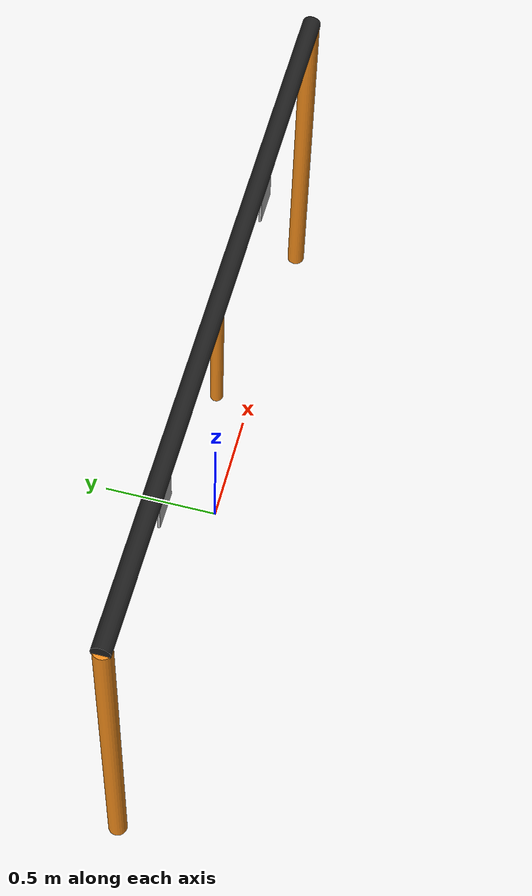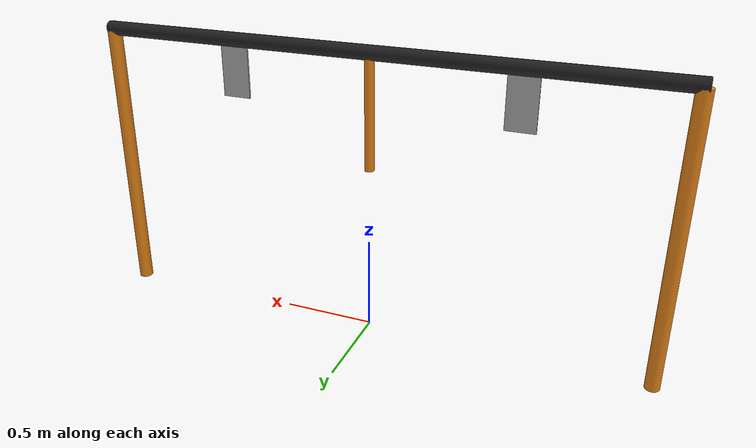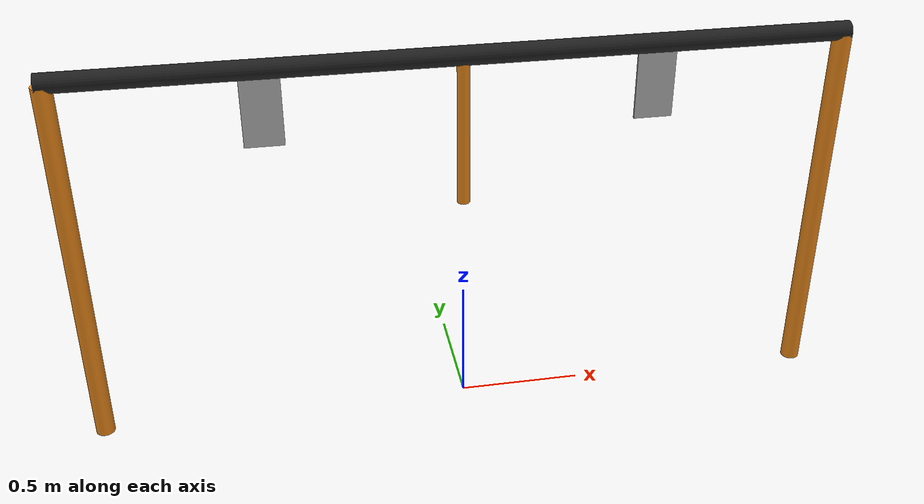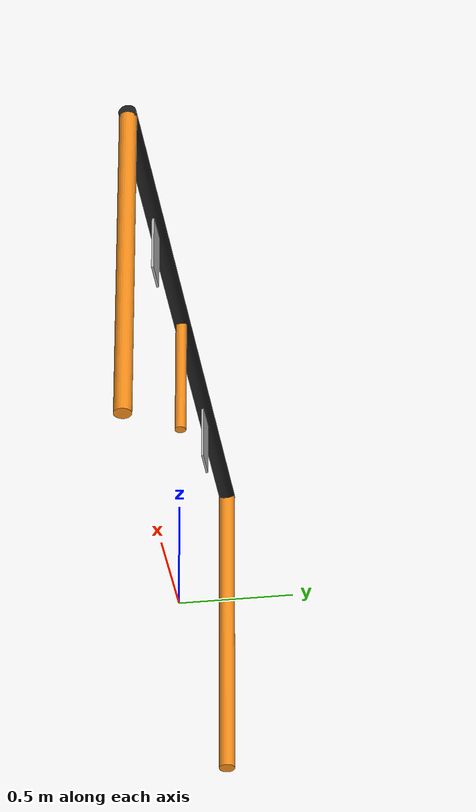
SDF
<?xml version="1.0"?>
<sdf version="1.11">  <model name="robosub_gate">
    <static>1</static>

    <link name="gate_top">
      <pose>0 0 1.524 0 1.5707 0</pose>
      <visual name="gate_top_vis">
        <geometry>
          <cylinder>
            <radius>0.0381</radius>
            <length>3.048</length>
          </cylinder>
        </geometry>
        <material>
          <script>
            <uri>file://media/materials/scripts/gazebo.material</uri>
            <name>Gazebo/FlatBlack</name>
          </script>
        </material>
      </visual>
      <collision name="gate_top_collide">
        <geometry>
          <cylinder>
            <radius>0.0381</radius>
            <length>3.048</length>
          </cylinder>
        </geometry>
      </collision>
    </link>

    <link name="gate_mid">
      <pose>0 0 1.2192 0 0 0</pose>
      <visual name="gate_mid_vis">
        <geometry>
          <cylinder>
            <radius>0.0254</radius>
            <length>0.6096</length>
          </cylinder>
        </geometry>
        <material>
          <script>
            <uri>file://media/materials/scripts/gazebo.material</uri>
            <name>Gazebo/Orange</name>
          </script>
        </material>
      </visual>
      <collision name="gate_mid_collide">
        <geometry>
          <cylinder>
            <radius>0.0254</radius>
            <length>0.6096</length>
          </cylinder>
        </geometry>
      </collision>
    </link>

    <link name="box_gman">
      <pose>-0.7512 0 1.3716 0 0 0</pose>
      <visual name="box_gman_vis">
        <geometry>
          <box>
            <size>0.1524 0.01 0.3048</size>
          </box>
        </geometry>
        <material>
          <script>
            <uri>file://materials/scripts/gman.material</uri>
            <name>TexturedShape/gman</name>
          </script>
        </material>
      </visual>
    </link>

    <link name="box_bootlegger">
      <pose>0.7512 0 1.3716 0 0 0</pose>
      <visual name="box_bootlegger_vis">
        <geometry>
          <box>
            <size>0.1524 0.01 0.3048</size>
          </box>
        </geometry>
        <material>
          <script>
            <uri>file://materials/scripts/bootlegger.material</uri>
            <name>TexturedShape/bootlegger</name>
          </script>
        </material>
      </visual>
    </link>

    <link name="gate_left">
      <pose>-1.5024 0 0.7512 0 0 0</pose>
      <visual name="gate_left_top">
        <geometry>
          <cylinder>
            <radius>0.0381</radius>
            <length>1.524</length>
          </cylinder>
        </geometry>
        <material>
          <script>
            <uri>file://media/materials/scripts/gazebo.material</uri>
            <name>Gazebo/Orange</name>
          </script>
        </material>
      </visual>
      <collision name="gate_left_collide">
        <geometry>
          <cylinder>
            <radius>0.0381</radius>
            <length>1.524</length>
          </cylinder>
        </geometry>
      </collision>
    </link>

    <link name="gate_right">
      <pose>1.5024 0 0.7512 0 0 0</pose>
      <visual name="gate_right_top">
        <geometry>
          <cylinder>
            <radius>0.0381</radius>
            <length>1.524</length>
          </cylinder>
        </geometry>
        <material>
          <script>
            <uri>file://media/materials/scripts/gazebo.material</uri>
            <name>Gazebo/Orange</name>
          </script>
        </material>
      </visual>
      <collision name="gate_right_collide">
        <geometry>
          <cylinder>
            <radius>0.0381</radius>
            <length>1.524</length>
          </cylinder>
        </geometry>
      </collision>
    </link>
  </model>
</sdf>
